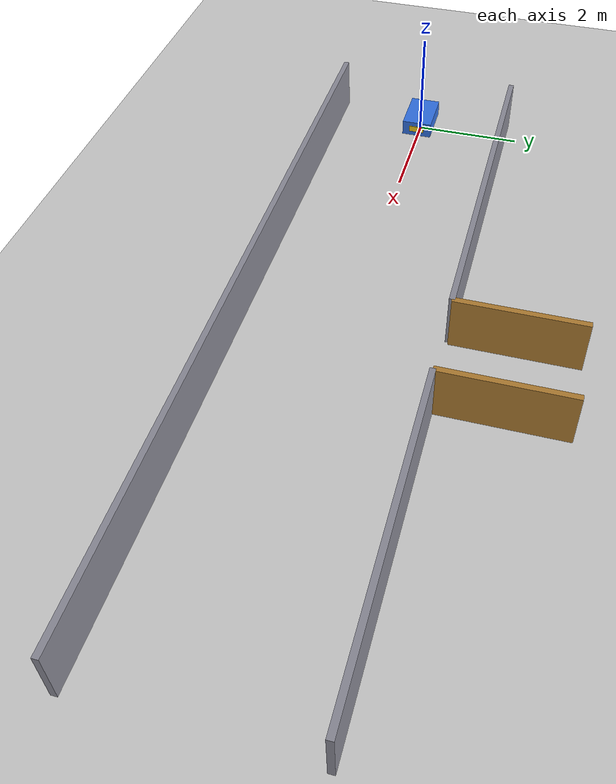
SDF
<sdf version="1.6">
 <world name="industrial_blind_corner">
  <include><uri>model://sun</uri></include>
  <include><uri>model://ground_plane</uri></include>
  <plugin name="gazebo_ros_state" filename="libgazebo_ros_state.so">
   <ros><namespace>/gazebo</namespace></ros>
   <update_rate>20.0</update_rate>
  </plugin>
  <model name="wall_bottom">
   <static>true</static>
   <pose>6.25 -1.75 0.5 0 0 0</pose>
   <link name="l">
    <collision name="c"><geometry><box><size>13.5 0.1 1.0</size></box></geometry></collision>
    <visual name="v">
     <geometry><box><size>13.5 0.1 1.0</size></box></geometry>
     <material><ambient>0.55 0.55 0.6 1</ambient></material>
    </visual>
   </link>
  </model>
  <model name="wall_top_left">
   <static>true</static>
   <pose>2.75 1.75 0.5 0 0 0</pose>
   <link name="l">
    <collision name="c"><geometry><box><size>6.5 0.1 1.0</size></box></geometry></collision>
    <visual name="v">
     <geometry><box><size>6.5 0.1 1.0</size></box></geometry>
     <material><ambient>0.55 0.55 0.6 1</ambient></material>
    </visual>
   </link>
  </model>
  <model name="wall_top_right">
   <static>true</static>
   <pose>10.25 1.75 0.5 0 0 0</pose>
   <link name="l">
    <collision name="c"><geometry><box><size>5.5 0.1 1.0</size></box></geometry></collision>
    <visual name="v">
     <geometry><box><size>5.5 0.1 1.0</size></box></geometry>
     <material><ambient>0.55 0.55 0.6 1</ambient></material>
    </visual>
   </link>
  </model>
  <model name="aisle_wall_left">
   <static>true</static>
   <pose>6.0 2.85 0.5 0 0 0</pose>
   <link name="l">
    <collision name="c"><geometry><box><size>0.1 2.2 1.0</size></box></geometry></collision>
    <visual name="v">
     <geometry><box><size>0.1 2.2 1.0</size></box></geometry>
     <material><ambient>0.7 0.5 0.2 1</ambient></material>
    </visual>
   </link>
  </model>
  <model name="aisle_wall_right">
   <static>true</static>
   <pose>7.5 2.85 0.5 0 0 0</pose>
   <link name="l">
    <collision name="c"><geometry><box><size>0.1 2.2 1.0</size></box></geometry></collision>
    <visual name="v">
     <geometry><box><size>0.1 2.2 1.0</size></box></geometry>
     <material><ambient>0.7 0.5 0.2 1</ambient></material>
    </visual>
   </link>
  </model>
  <model name="amr">
   <pose>0 0 0.1 0 0 0</pose>
   <link name="base_footprint">
    <inertial>
     <mass>60.0</mass>
     <inertia><ixx>3.0</ixx><iyy>6.0</iyy><izz>7.0</izz><ixy>0</ixy><ixz>0</ixz><iyz>0</iyz></inertia>
    </inertial>
    <collision name="body_c">
     <pose>0 0 0.14 0 0 0</pose>
     <geometry><box><size>0.9 0.58 0.3</size></box></geometry>
    </collision>
    <visual name="body_v">
     <pose>0 0 0.14 0 0 0</pose>
     <geometry><box><size>0.9 0.58 0.3</size></box></geometry>
     <material><ambient>0.15 0.35 0.75 1</ambient><diffuse>0.2 0.45 0.9 1</diffuse></material>
    </visual>
    <visual name="nose_v">
     <pose>0.42 0 0.14 0 0 0</pose>
     <geometry><box><size>0.08 0.3 0.12</size></box></geometry>
     <material><ambient>0.95 0.8 0.1 1</ambient></material>
    </visual>
    <collision name="caster_f">
     <pose>0.35 0 -0.045 0 0 0</pose>
     <geometry><sphere><radius>0.05</radius></sphere></geometry>
     <surface><friction><ode><mu>0</mu><mu2>0</mu2></ode></friction></surface>
    </collision>
    <collision name="caster_r">
     <pose>-0.35 0 -0.045 0 0 0</pose>
     <geometry><sphere><radius>0.05</radius></sphere></geometry>
     <surface><friction><ode><mu>0</mu><mu2>0</mu2></ode></friction></surface>
    </collision>
   </link>
   <link name="left_wheel">
    <pose>0 0.25 0 0 0 0</pose>
    <inertial>
     <mass>1.5</mass>
     <inertia><ixx>0.005</ixx><iyy>0.008</iyy><izz>0.005</izz><ixy>0</ixy><ixz>0</ixz><iyz>0</iyz></inertia>
    </inertial>
    <collision name="c">
     <pose>0 0 0 -1.5708 0 0</pose>
     <geometry><cylinder><radius>0.1</radius><length>0.05</length></cylinder></geometry>
     <surface><friction><ode><mu>1.0</mu><mu2>1.0</mu2></ode></friction></surface>
    </collision>
    <visual name="v">
     <pose>0 0 0 -1.5708 0 0</pose>
     <geometry><cylinder><radius>0.1</radius><length>0.05</length></cylinder></geometry>
     <material><ambient>0.1 0.1 0.1 1</ambient></material>
    </visual>
   </link>
   <link name="right_wheel">
    <pose>0 -0.25 0 0 0 0</pose>
    <inertial>
     <mass>1.5</mass>
     <inertia><ixx>0.005</ixx><iyy>0.008</iyy><izz>0.005</izz><ixy>0</ixy><ixz>0</ixz><iyz>0</iyz></inertia>
    </inertial>
    <collision name="c">
     <pose>0 0 0 -1.5708 0 0</pose>
     <geometry><cylinder><radius>0.1</radius><length>0.05</length></cylinder></geometry>
     <surface><friction><ode><mu>1.0</mu><mu2>1.0</mu2></ode></friction></surface>
    </collision>
    <visual name="v">
     <pose>0 0 0 -1.5708 0 0</pose>
     <geometry><cylinder><radius>0.1</radius><length>0.05</length></cylinder></geometry>
     <material><ambient>0.1 0.1 0.1 1</ambient></material>
    </visual>
   </link>
   <joint name="left_wheel_joint" type="revolute">
    <parent>base_footprint</parent>
    <child>left_wheel</child>
    <axis><xyz>0 1 0</xyz><limit><lower>-1e16</lower><upper>1e16</upper></limit></axis>
   </joint>
   <joint name="right_wheel_joint" type="revolute">
    <parent>base_footprint</parent>
    <child>right_wheel</child>
    <axis><xyz>0 1 0</xyz><limit><lower>-1e16</lower><upper>1e16</upper></limit></axis>
   </joint>
   <plugin name="diff_drive" filename="libgazebo_ros_diff_drive.so">
    <ros><namespace>/</namespace></ros>
    <update_rate>50</update_rate>
    <left_joint>left_wheel_joint</left_joint>
    <right_joint>right_wheel_joint</right_joint>
    <wheel_separation>0.5</wheel_separation>
    <wheel_diameter>0.2</wheel_diameter>
    <max_wheel_torque>200</max_wheel_torque>
    <max_wheel_acceleration>3.0</max_wheel_acceleration>
    <command_topic>cmd_vel</command_topic>
    <odometry_topic>odom</odometry_topic>
    <odometry_frame>odom</odometry_frame>
    <robot_base_frame>base_footprint</robot_base_frame>
    <publish_odom>true</publish_odom>
    <publish_odom_tf>true</publish_odom_tf>
    <publish_wheel_tf>true</publish_wheel_tf>
   </plugin>
  </model>
 </world>
</sdf>
